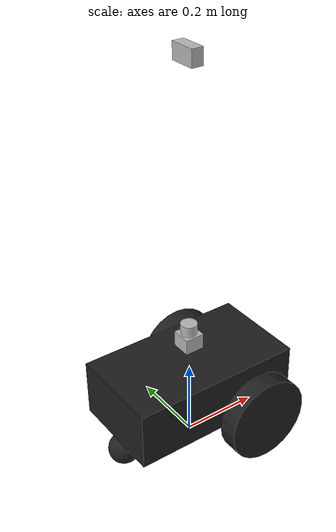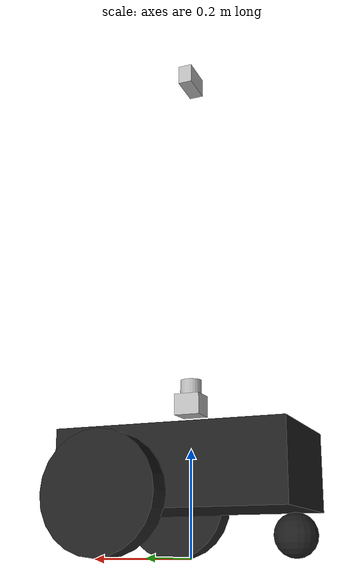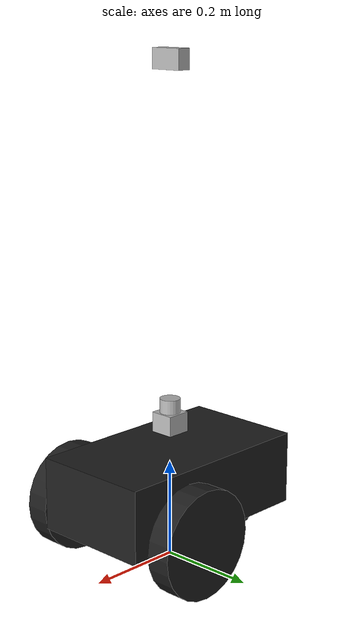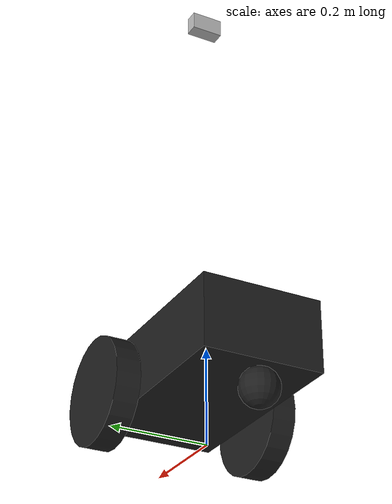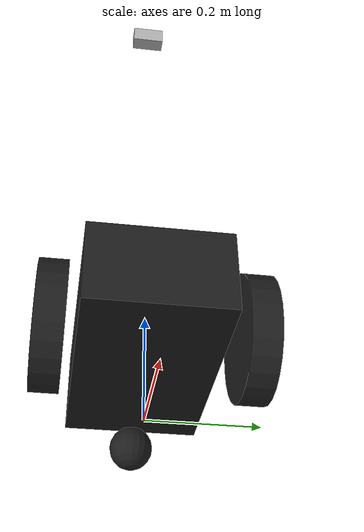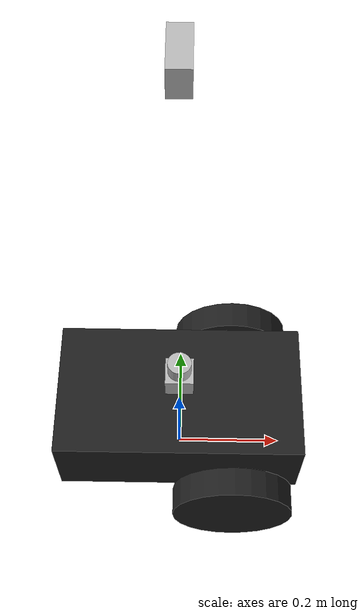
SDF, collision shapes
<?xml version="1.0"?>
<sdf version="1.4">
  <model name="sudo">

    <!-- Pioneer 2 Chassis-->
    <link name="chassis">
      <pose>0 0 0.16 0 0 0</pose>
      <inertial>
        <mass>6.0</mass>
        <inertia>
          <ixx>0.07</ixx>
          <iyy>0.08</iyy>
          <izz>0.10</izz>
          <ixy>0</ixy>
          <ixz>0</ixz>
          <iyz>0</iyz>
        </inertia>
      </inertial>
      <collision name="collision">
        <geometry>
          <box>
            <size>0.445 0.25 0.15</size>
          </box>
        </geometry>
      </collision>
      <collision name="castor_collision">
        <pose>-0.200 0 -0.12 0 0 0</pose>
        <geometry>
          <sphere>
            <radius>0.04</radius>
          </sphere>
        </geometry>
        <surface>
          <friction>
            <ode>
              <mu>0.0</mu>
              <mu2>0.0</mu2>
              <slip1>1.0</slip1>
              <slip2>1.0</slip2>
            </ode>
          </friction>
        </surface>
      </collision>
      <visual name="visual">
        <pose>0 0 0.04 0 0 0</pose>
        <geometry>
          <mesh>
            <uri>model://pioneer2dx/meshes/chassis.dae</uri>
          </mesh>
        </geometry>
      </visual>
      <visual name="castor_visual">
        <pose>-0.200 0 -0.12 0 0 0</pose>
        <geometry>
          <sphere>
            <radius>0.04</radius>
          </sphere>
        </geometry>
        <material>
          <script>
            <uri>file://media/materials/scripts/gazebo.material</uri>
            <name>Gazebo/FlatBlack</name>
          </script>
        </material>
      </visual>
    </link>
    <!-- Bottom cube of Sudo-->

<!-- Small webcam that Amir uses for Navigation-->
    <link name="webcam">
      <pose>0.0 0 1.0 0 0 0</pose>
      <inertial>
        <mass>0.1</mass>
        <inertia>
          <ixx>0.07</ixx>
          <iyy>0.08</iyy>
          <izz>0.10</izz>
          <ixy>0</ixy>
          <ixz>0</ixz>
          <iyz>0</iyz>
        </inertia>
      </inertial>
      <collision name="collision">
        <geometry>
          <box>
            <size> 0.029 0.068 0.040</size>
          </box>
        </geometry>
      </collision>
      <visual name="visual">
        <geometry>
          <box>
            <size>0.029 0.068 0.040</size>
          </box>
        </geometry>
      </visual>
      <sensor name="camera" type="camera">
        <camera>
          <horizontal_fov>1.047</horizontal_fov>
          <image>
            <width>320</width>
            <height>240</height>
          </image>
          <clip>
            <near>0.05</near>
            <far>10</far>
          </clip>
        </camera>
        <always_on>1</always_on>
        <update_rate>30</update_rate>
        <visualize>false</visualize>
        <!-- Plugin to simulate camera image topic in gazebo and ros-->
        <plugin name="camera_controller" filename="libgazebo_ros_camera.so">
	        <alwaysOn>true</alwaysOn>
	        <updateRate>30.0</updateRate>
	        <cameraName>sudo/bottom_webcam</cameraName>
	        <imageTopicName>image_raw</imageTopicName>
	        <cameraInfoTopicName>camera_info</cameraInfoTopicName>
	        <frameName>webcam_link</frameName>
      </plugin>
      </sensor>
    </link>
    <!-- The link for sick laser. The used model is actually hokoyu-->
    <link name="sick_laser">
      <pose>0.0 0 0.3 0 0 3.14</pose>
      <inertial>
        <mass>0.1</mass>
        <inertia>
          <ixx>0.07</ixx>
          <iyy>0.08</iyy>
          <izz>0.10</izz>
          <ixy>0</ixy>
          <ixz>0</ixz>
          <iyz>0</iyz>
        </inertia>
      </inertial>
      <visual name="visual">
        <geometry>
          <mesh>
            <uri>model://hokuyo/meshes/hokuyo.dae</uri>
          </mesh>
        </geometry>
      </visual>

      <collision name="collision-base">
        <pose>0 0 -0.0145 0 0 0</pose>
        <geometry>
          <box>
            <size>0.05 0.05 0.041</size>
          </box>
        </geometry>
      </collision>

      <collision name="collision-top">
        <pose>0 0 0.0205 0 0 0</pose>
        <geometry>
          <cylinder>
            <radius>0.021</radius>
            <length>0.029</length>
          </cylinder>
        </geometry>
      </collision>

      <sensor type="gpu_ray" name="head_hokuyo_sensor">
        <pose>0 0 0 0 0 0</pose>
        <visualize>true</visualize>
        <update_rate>30</update_rate>
        <ray>
          <scan>
            <horizontal>
              <samples>180</samples>
              <resolution>1</resolution>
              <min_angle>-1.7</min_angle>
              <max_angle>1.7</max_angle>
            </horizontal>
          </scan>
          <range>
            <min>0.10</min>
            <max>10.0</max>
            <resolution>0.01</resolution>
          </range>
          <noise>
            <type>gaussian</type>
            <mean>0.0</mean>
            <stddev>0.01</stddev>
          </noise>
        </ray>
        <!-- Plugin to simulate ros laser topic in gazebo and ros-->
        <plugin name="gazebo_ros_head_hokuyo_controller" filename="libgazebo_ros_gpu_laser.so">
          <topicName>/sudo/laser/scan</topicName>
          <frameName>laser_link</frameName>
        </plugin>
      </sensor>
    </link>

    <link name="right_wheel">
      <pose>0.1 -.17 0.11 0 1.5707 1.5707</pose>
      <inertial>
        <mass>0.5</mass>
        <inertia>
          <ixx>0.0051</ixx>
          <iyy>0.0051</iyy>
          <izz>0.0090</izz>
          <ixy>0</ixy>
          <ixz>0</ixz>
          <iyz>0</iyz>
        </inertia>
      </inertial>
      <collision name="collision">
        <geometry>
          <cylinder>
            <radius>0.11</radius>
            <length>0.05</length>
          </cylinder>
        </geometry>
        <surface>
          <friction>
            <ode>
              <mu>100000.0</mu>
              <mu2>100000.0</mu2>
              <slip1>0.0</slip1>
              <slip2>0.0</slip2>
            </ode>
          </friction>
        </surface>
      </collision>
      <visual name="visual">
        <geometry>
          <cylinder>
            <radius>0.11</radius>
            <length>0.05</length>
          </cylinder>
        </geometry>
        <material>
          <script>
            <uri>file://media/materials/scripts/gazebo.material</uri>
            <name>Gazebo/FlatBlack</name>
          </script>
        </material>
      </visual>
    </link>

    <link name="left_wheel">
      <pose>0.1 .17 0.11 0 1.5707 1.5707</pose>
      <inertial>
        <mass>0.5</mass>
        <inertia>
          <ixx>0.0051</ixx>
          <iyy>0.0051</iyy>
          <izz>0.0090</izz>
          <ixy>0</ixy>
          <ixz>0</ixz>
          <iyz>0</iyz>
        </inertia>
      </inertial>
      <collision name="collision">
        <geometry>
          <cylinder>
            <radius>0.11</radius>
            <length>0.05</length>
          </cylinder>
        </geometry>
        <surface>
          <friction>
            <ode>
              <mu>100000.0</mu>
              <mu2>100000.0</mu2>
              <slip1>0.0</slip1>
              <slip2>0.0</slip2>
            </ode>
          </friction>
        </surface>
      </collision>
      <visual name="visual">
        <geometry>
          <cylinder>
            <radius>0.11</radius>
            <length>0.05</length>
          </cylinder>
        </geometry>
        <material>
          <script>
            <uri>file://media/materials/scripts/gazebo.material</uri>
            <name>Gazebo/FlatBlack</name>
          </script>
        </material>
      </visual>
    </link>

    <joint type="revolute" name="left_wheel_hinge">
      <pose>0 0 0.03 0 0 0</pose>
      <child>left_wheel</child>
      <parent>chassis</parent>
      <axis>
        <xyz>0 1 0</xyz>
      </axis>
    </joint>

    <joint type="revolute" name="right_wheel_hinge">
      <pose>0 0 -0.03 0 0 0</pose>
      <child>right_wheel</child>
      <parent>chassis</parent>
      <axis>
        <xyz>0 1 0</xyz>
      </axis>
    </joint>

    <!-- Connection between chassis and bottom rectangular box-->
    <joint type="revolute" name="chassis_to_webcam">
      <pose>0 0 0.0 0 0 0</pose>
      <child>webcam</child>
      <parent>chassis</parent>
      <axis>
        <xyz>1 0 0</xyz>
      </axis>

    </joint>

    <!-- Connection between chassis and laser-->
    <joint type="revolute" name="laser_to_chassis">
      <pose>0.0 0 0.0 0 0 0</pose>
      <child>sick_laser</child>
      <parent>chassis</parent>
      <axis>
        <xyz>0 0 1</xyz>
      </axis>
    </joint>

	<!-- Make Sudo Move-->

  </model>
</sdf>
